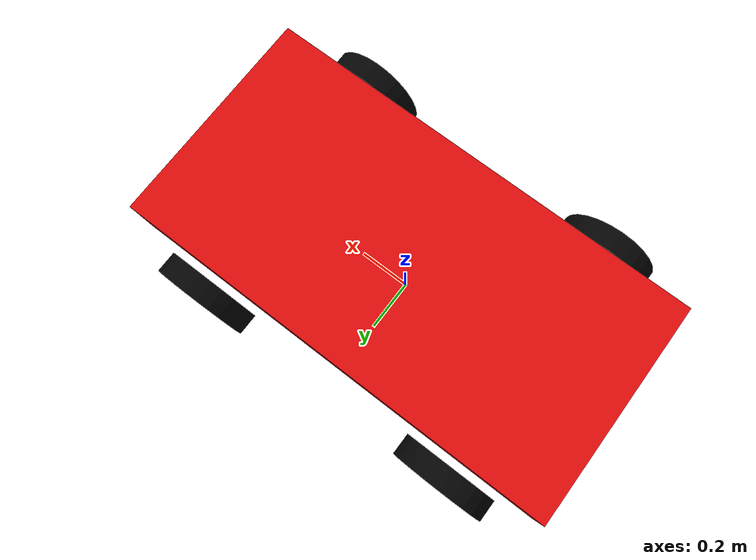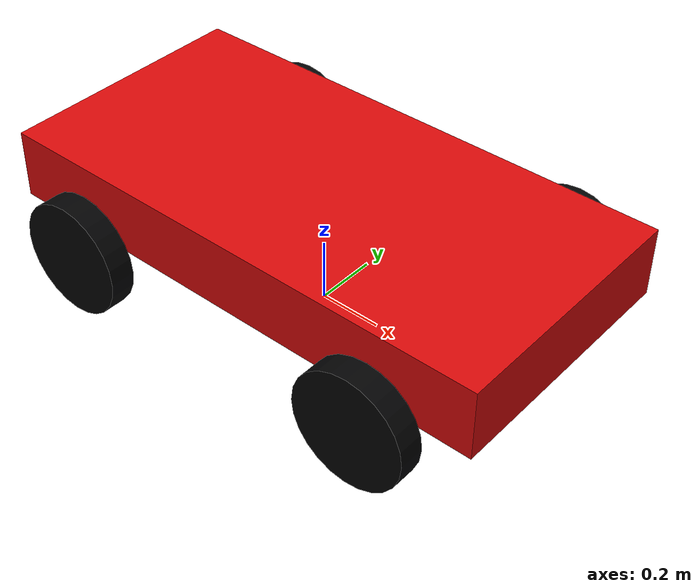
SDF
<?xml version="1.0" ?>
<sdf version="1.9">
  <model name="right_angle_car_wsl_headless">
    <pose>0 0 0 0 0 0</pose>
    <self_collide>false</self_collide>

    <plugin filename="gz-sim-diff-drive-system" name="gz::sim::systems::DiffDrive">
      <left_joint>left_rear_wheel_joint</left_joint>
      <right_joint>right_rear_wheel_joint</right_joint>
      <wheel_separation>0.96</wheel_separation>
      <wheel_radius>0.18</wheel_radius>
      <odom_publish_frequency>50</odom_publish_frequency>
      <topic>/cmd_vel</topic>
      <odom_topic>/sensors/wheel_odom</odom_topic>
      <frame_id>world</frame_id>
      <child_frame_id>base_link</child_frame_id>
    </plugin>

    <link name="base_link">
      <inertial>
        <pose>0 0 0.32 0 0 0</pose>
        <mass>18.0</mass>
        <inertia>
          <ixx>1.2</ixx>
          <ixy>0</ixy>
          <ixz>0</ixz>
          <iyy>3.1</iyy>
          <iyz>0</iyz>
          <izz>3.4</izz>
        </inertia>
      </inertial>
      <collision name="chassis_collision">
        <pose>0 0 0.32 0 0 0</pose>
        <geometry>
          <box>
            <size>1.65 0.82 0.22</size>
          </box>
        </geometry>
      </collision>
      <visual name="chassis_visual">
        <pose>0 0 0.32 0 0 0</pose>
        <geometry>
          <box>
            <size>1.65 0.82 0.22</size>
          </box>
        </geometry>
        <material>
          <ambient>0.85 0.04 0.04 1</ambient>
          <diffuse>0.85 0.04 0.04 1</diffuse>
        </material>
      </visual>
    </link>

    <link name="left_rear_wheel_link">
      <pose relative_to="base_link">-0.52 0.48 0.18 0 0 0</pose>
      <inertial>
        <mass>1.2</mass>
        <inertia>
          <ixx>0.02</ixx>
          <ixy>0</ixy>
          <ixz>0</ixz>
          <iyy>0.02</iyy>
          <iyz>0</iyz>
          <izz>0.02</izz>
        </inertia>
      </inertial>
      <collision name="collision">
        <pose>0 0 0 1.57079632679 0 0</pose>
        <geometry>
          <cylinder>
            <radius>0.18</radius>
            <length>0.08</length>
          </cylinder>
        </geometry>
        <surface>
          <friction>
            <ode>
              <mu>1.3</mu>
              <mu2>1.3</mu2>
            </ode>
          </friction>
        </surface>
      </collision>
      <visual name="visual">
        <pose>0 0 0 1.57079632679 0 0</pose>
        <geometry>
          <cylinder>
            <radius>0.18</radius>
            <length>0.08</length>
          </cylinder>
        </geometry>
        <material>
          <ambient>0.01 0.01 0.012 1</ambient>
          <diffuse>0.01 0.01 0.012 1</diffuse>
        </material>
      </visual>
    </link>

    <link name="right_rear_wheel_link">
      <pose relative_to="base_link">-0.52 -0.48 0.18 0 0 0</pose>
      <inertial>
        <mass>1.2</mass>
        <inertia>
          <ixx>0.02</ixx>
          <ixy>0</ixy>
          <ixz>0</ixz>
          <iyy>0.02</iyy>
          <iyz>0</iyz>
          <izz>0.02</izz>
        </inertia>
      </inertial>
      <collision name="collision">
        <pose>0 0 0 1.57079632679 0 0</pose>
        <geometry>
          <cylinder>
            <radius>0.18</radius>
            <length>0.08</length>
          </cylinder>
        </geometry>
        <surface>
          <friction>
            <ode>
              <mu>1.3</mu>
              <mu2>1.3</mu2>
            </ode>
          </friction>
        </surface>
      </collision>
      <visual name="visual">
        <pose>0 0 0 1.57079632679 0 0</pose>
        <geometry>
          <cylinder>
            <radius>0.18</radius>
            <length>0.08</length>
          </cylinder>
        </geometry>
        <material>
          <ambient>0.01 0.01 0.012 1</ambient>
          <diffuse>0.01 0.01 0.012 1</diffuse>
        </material>
      </visual>
    </link>

    <link name="left_front_wheel_link">
      <pose relative_to="base_link">0.52 0.48 0.18 0 0 0</pose>
      <inertial>
        <mass>1.2</mass>
        <inertia>
          <ixx>0.02</ixx>
          <ixy>0</ixy>
          <ixz>0</ixz>
          <iyy>0.02</iyy>
          <iyz>0</iyz>
          <izz>0.02</izz>
        </inertia>
      </inertial>
      <collision name="collision">
        <pose>0 0 0 1.57079632679 0 0</pose>
        <geometry>
          <cylinder>
            <radius>0.18</radius>
            <length>0.08</length>
          </cylinder>
        </geometry>
        <surface>
          <friction>
            <ode>
              <mu>0.4</mu>
              <mu2>0.4</mu2>
            </ode>
          </friction>
        </surface>
      </collision>
      <visual name="visual">
        <pose>0 0 0 1.57079632679 0 0</pose>
        <geometry>
          <cylinder>
            <radius>0.18</radius>
            <length>0.08</length>
          </cylinder>
        </geometry>
        <material>
          <ambient>0.01 0.01 0.012 1</ambient>
          <diffuse>0.01 0.01 0.012 1</diffuse>
        </material>
      </visual>
    </link>

    <link name="right_front_wheel_link">
      <pose relative_to="base_link">0.52 -0.48 0.18 0 0 0</pose>
      <inertial>
        <mass>1.2</mass>
        <inertia>
          <ixx>0.02</ixx>
          <ixy>0</ixy>
          <ixz>0</ixz>
          <iyy>0.02</iyy>
          <iyz>0</iyz>
          <izz>0.02</izz>
        </inertia>
      </inertial>
      <collision name="collision">
        <pose>0 0 0 1.57079632679 0 0</pose>
        <geometry>
          <cylinder>
            <radius>0.18</radius>
            <length>0.08</length>
          </cylinder>
        </geometry>
        <surface>
          <friction>
            <ode>
              <mu>0.4</mu>
              <mu2>0.4</mu2>
            </ode>
          </friction>
        </surface>
      </collision>
      <visual name="visual">
        <pose>0 0 0 1.57079632679 0 0</pose>
        <geometry>
          <cylinder>
            <radius>0.18</radius>
            <length>0.08</length>
          </cylinder>
        </geometry>
        <material>
          <ambient>0.01 0.01 0.012 1</ambient>
          <diffuse>0.01 0.01 0.012 1</diffuse>
        </material>
      </visual>
    </link>

    <joint name="left_rear_wheel_joint" type="revolute">
      <parent>base_link</parent>
      <child>left_rear_wheel_link</child>
      <axis>
        <xyz>0 1 0</xyz>
        <limit>
          <lower>-1e16</lower>
          <upper>1e16</upper>
          <effort>70</effort>
          <velocity>40</velocity>
        </limit>
        <dynamics>
          <damping>0.05</damping>
          <friction>0.02</friction>
        </dynamics>
      </axis>
    </joint>

    <joint name="right_rear_wheel_joint" type="revolute">
      <parent>base_link</parent>
      <child>right_rear_wheel_link</child>
      <axis>
        <xyz>0 1 0</xyz>
        <limit>
          <lower>-1e16</lower>
          <upper>1e16</upper>
          <effort>70</effort>
          <velocity>40</velocity>
        </limit>
        <dynamics>
          <damping>0.05</damping>
          <friction>0.02</friction>
        </dynamics>
      </axis>
    </joint>

    <joint name="left_front_wheel_joint" type="revolute">
      <parent>base_link</parent>
      <child>left_front_wheel_link</child>
      <axis>
        <xyz>0 1 0</xyz>
        <limit>
          <lower>-1e16</lower>
          <upper>1e16</upper>
          <effort>30</effort>
          <velocity>40</velocity>
        </limit>
        <dynamics>
          <damping>0.05</damping>
          <friction>0.02</friction>
        </dynamics>
      </axis>
    </joint>

    <joint name="right_front_wheel_joint" type="revolute">
      <parent>base_link</parent>
      <child>right_front_wheel_link</child>
      <axis>
        <xyz>0 1 0</xyz>
        <limit>
          <lower>-1e16</lower>
          <upper>1e16</upper>
          <effort>30</effort>
          <velocity>40</velocity>
        </limit>
        <dynamics>
          <damping>0.05</damping>
          <friction>0.02</friction>
        </dynamics>
      </axis>
    </joint>

    <link name="gps_link">
      <pose relative_to="base_link">-0.25 0 0.78 0 0 0</pose>
      <sensor name="gps_sensor" type="navsat">
        <topic>/sensors/gps/fix</topic>
        <frame_id>gps_link</frame_id>
        <always_on>true</always_on>
        <update_rate>10</update_rate>
        <visualize>false</visualize>
        <navsat>
          <position_sensing>
            <horizontal>
              <noise type="gaussian">
                <mean>0.0</mean>
                <stddev>0.35</stddev>
              </noise>
            </horizontal>
            <vertical>
              <noise type="gaussian">
                <mean>0.0</mean>
                <stddev>0.5</stddev>
              </noise>
            </vertical>
          </position_sensing>
        </navsat>
      </sensor>
    </link>

    <link name="imu_link">
      <pose relative_to="base_link">0 0 0.36 0 0 0</pose>
      <sensor name="imu_sensor" type="imu">
        <topic>/sensors/imu/data_raw</topic>
        <frame_id>imu_link</frame_id>
        <always_on>true</always_on>
        <update_rate>100</update_rate>
        <visualize>false</visualize>
        <imu>
          <angular_velocity>
            <x>
              <noise type="gaussian">
                <mean>0.0</mean>
                <stddev>0.002</stddev>
              </noise>
            </x>
            <y>
              <noise type="gaussian">
                <mean>0.0</mean>
                <stddev>0.002</stddev>
              </noise>
            </y>
            <z>
              <noise type="gaussian">
                <mean>0.0</mean>
                <stddev>0.002</stddev>
              </noise>
            </z>
          </angular_velocity>
          <linear_acceleration>
            <x>
              <noise type="gaussian">
                <mean>0.0</mean>
                <stddev>0.03</stddev>
              </noise>
            </x>
            <y>
              <noise type="gaussian">
                <mean>0.0</mean>
                <stddev>0.03</stddev>
              </noise>
            </y>
            <z>
              <noise type="gaussian">
                <mean>0.0</mean>
                <stddev>0.03</stddev>
              </noise>
            </z>
          </linear_acceleration>
        </imu>
      </sensor>
    </link>

    <link name="magnetometer_link">
      <pose relative_to="base_link">0.15 0 0.62 0 0 0</pose>
      <sensor name="magnetometer_sensor" type="magnetometer">
        <topic>/sensors/magnetic_field</topic>
        <frame_id>magnetometer_link</frame_id>
        <always_on>true</always_on>
        <update_rate>30</update_rate>
        <visualize>false</visualize>
        <magnetometer>
          <x>
            <noise type="gaussian">
              <mean>0.0</mean>
              <stddev>0.000001</stddev>
            </noise>
          </x>
          <y>
            <noise type="gaussian">
              <mean>0.0</mean>
              <stddev>0.000001</stddev>
            </noise>
          </y>
          <z>
            <noise type="gaussian">
              <mean>0.0</mean>
              <stddev>0.000001</stddev>
            </noise>
          </z>
        </magnetometer>
      </sensor>
    </link>

    <joint name="gps_joint" type="fixed">
      <parent>base_link</parent>
      <child>gps_link</child>
    </joint>
    <joint name="imu_joint" type="fixed">
      <parent>base_link</parent>
      <child>imu_link</child>
    </joint>
    <joint name="magnetometer_joint" type="fixed">
      <parent>base_link</parent>
      <child>magnetometer_link</child>
    </joint>
  </model>
</sdf>
